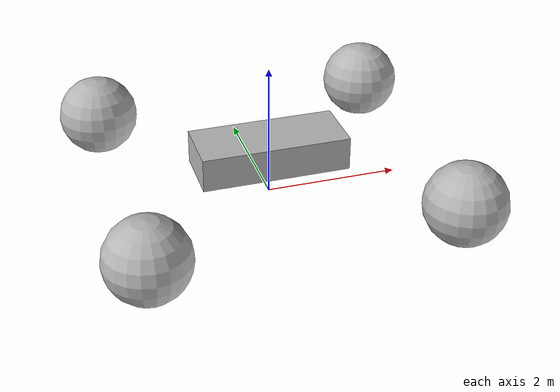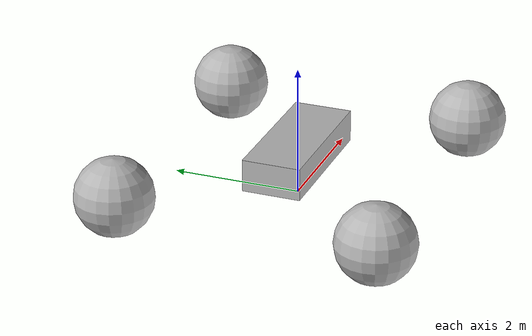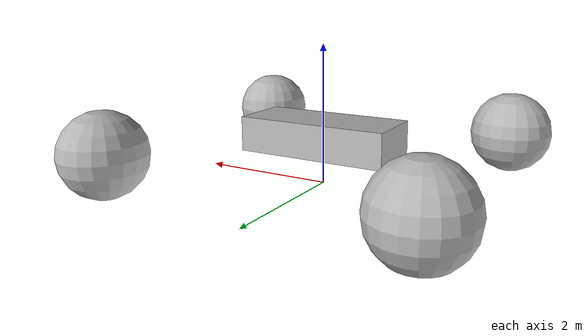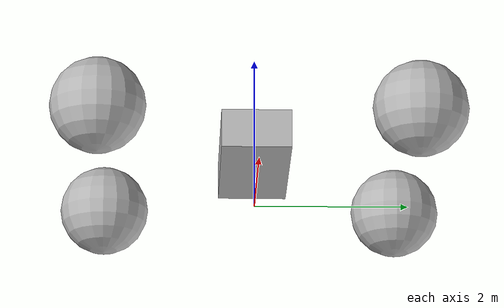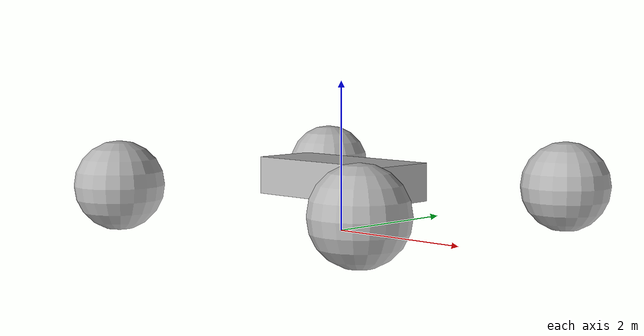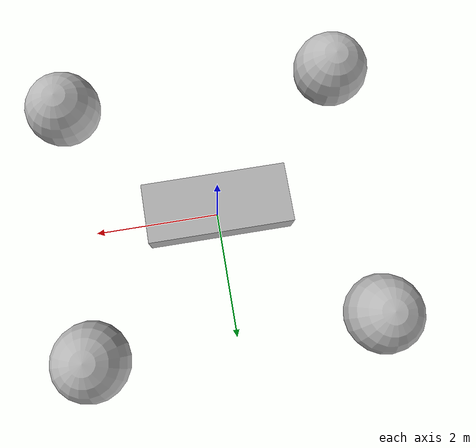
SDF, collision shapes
<?xml version='1.0' encoding='utf-8'?>
<sdf version="1.8">
  <model name="perseverance">
    <self_collide>false</self_collide>

    <link name="base_link">
      <inertial>
        <pose>0 0 0.1 0 0 0</pose>
        <mass>800.0</mass>
        <inertia>
          <ixx>400.0</ixx><iyy>700.0</iyy><izz>900.0</izz>
        </inertia>
      </inertial>
      <visual name="v">
        <pose>0 0 0 0 0 1.5707</pose>
        <geometry><mesh><uri>file:///home/keno/ros2_ws/src/my_robot_description/models/perseverance/resources/perseverance.dae</uri><scale>2 2 2</scale></mesh></geometry>
      </visual>
      <collision name="c">
        <pose>0 0 0.7 0 0 0</pose>
        <geometry><box><size>2.2 0.9 0.5</size></box></geometry>
      </collision>
    </link>

    <link name="lidar_link">
      <pose>0.0 0 2.0 0 0 0</pose>
      <sensor name="lidar" type="gpu_lidar">
        <topic>/model/perseverance/scan</topic>
        <update_rate>15</update_rate>
        <ray>
          <scan><horizontal><samples>360</samples><resolution>1</resolution><min_angle>-3.14159</min_angle><max_angle>3.14159</max_angle></horizontal></scan>
          <range><min>6.0</min><max>50.0</max></range>
        </ray>
      </sensor>
    </link>
    <joint name="lidar_joint" type="fixed"><parent>base_link</parent><child>lidar_link</child></joint>

    <link name="camera_link">
      <pose>3.5 0 2.5 0 0.15 -0.1</pose>
      <sensor name="camera" type="camera">
        <topic>/model/perseverance/camera</topic>
        <update_rate>15</update_rate>
        <camera>
          <horizontal_fov>1.047</horizontal_fov>
          <image><width>800</width><height>600</height></image>
          <clip><near>0.1</near><far>100.0</far></clip>
        </camera>
      </sensor>
    </link>
    <joint name="camera_joint" type="fixed"><parent>base_link</parent><child>camera_link</child></joint>

    <link name="left_front">
      <pose>2.2 2.0 0.6 0 0 0</pose>
      <inertial><mass>50.0</mass><inertia><ixx>10</ixx><iyy>10</iyy><izz>10</izz></inertia></inertial>
      <visual name="v"><pose>0 0 0 1.5707 0 0</pose><geometry><cylinder><radius>0.6</radius><length>0.5</length></cylinder></geometry></visual>
      <collision name="c">
        <pose>0 0 0 0 0 0</pose>
        <geometry><sphere><radius>0.6</radius></sphere></geometry>
        <surface>
          <contact><ode><kp>1000000.0</kp><kd>100.0</kd></ode></contact>
          <friction><ode><mu>1.0</mu><mu2>0.5</mu2><fdir1>1 0 0</fdir1></ode></friction>
        </surface>
      </collision>
    </link>

    <link name="left_back">
      <pose>-2.2 2.0 0.6 0 0 0</pose>
      <inertial><mass>50.0</mass><inertia><ixx>10</ixx><iyy>10</iyy><izz>10</izz></inertia></inertial>
      <visual name="v"><pose>0 0 0 1.5707 0 0</pose><geometry><cylinder><radius>0.6</radius><length>0.5</length></cylinder></geometry></visual>
      <collision name="c">
        <pose>0 0 0 0 0 0</pose>
        <geometry><sphere><radius>0.6</radius></sphere></geometry>
        <surface>
          <contact><ode><kp>1000000.0</kp><kd>100.0</kd></ode></contact>
          <friction><ode><mu>1.0</mu><mu2>0.5</mu2><fdir1>1 0 0</fdir1></ode></friction>
        </surface>
      </collision>
    </link>

    <link name="right_front">
      <pose>2.2 -2.0 0.6 0 0 0</pose>
      <inertial><mass>50.0</mass><inertia><ixx>10</ixx><iyy>10</iyy><izz>10</izz></inertia></inertial>
      <visual name="v"><pose>0 0 0 1.5707 0 0</pose><geometry><cylinder><radius>0.6</radius><length>0.5</length></cylinder></geometry></visual>
      <collision name="c">
        <pose>0 0 0 0 0 0</pose>
        <geometry><sphere><radius>0.6</radius></sphere></geometry>
        <surface>
          <contact><ode><kp>1000000.0</kp><kd>100.0</kd></ode></contact>
          <friction><ode><mu>1.0</mu><mu2>0.5</mu2><fdir1>1 0 0</fdir1></ode></friction>
        </surface>
      </collision>
    </link>

    <link name="right_back">
      <pose>-2.2 -2.0 0.6 0 0 0</pose>
      <inertial><mass>50.0</mass><inertia><ixx>10</ixx><iyy>10</iyy><izz>10</izz></inertia></inertial>
      <visual name="v"><pose>0 0 0 1.5707 0 0</pose><geometry><cylinder><radius>0.6</radius><length>0.5</length></cylinder></geometry></visual>
      <collision name="c">
        <pose>0 0 0 0 0 0</pose>
        <geometry><sphere><radius>0.6</radius></sphere></geometry>
        <surface>
          <contact><ode><kp>1000000.0</kp><kd>100.0</kd></ode></contact>
          <friction><ode><mu>1.0</mu><mu2>0.5</mu2><fdir1>1 0 0</fdir1></ode></friction>
        </surface>
      </collision>
    </link>

    <joint name="left_front_j" type="revolute"><child>left_front</child><parent>base_link</parent><axis><xyz>0 1 0</xyz><limit><effort>50000</effort></limit></axis></joint>
    <joint name="left_back_j" type="revolute"><child>left_back</child><parent>base_link</parent><axis><xyz>0 1 0</xyz><limit><effort>50000</effort></limit></axis></joint>
    <joint name="right_front_j" type="revolute"><child>right_front</child><parent>base_link</parent><axis><xyz>0 1 0</xyz><limit><effort>50000</effort></limit></axis></joint>
    <joint name="right_back_j" type="revolute"><child>right_back</child><parent>base_link</parent><axis><xyz>0 1 0</xyz><limit><effort>50000</effort></limit></axis></joint>

    <plugin filename="gz-sim-diff-drive-system" name="gz::sim::systems::DiffDrive">
      <left_joint>left_front_j</left_joint>
      <left_joint>left_back_j</left_joint>
      <right_joint>right_front_j</right_joint>
      <right_joint>right_back_j</right_joint>
      <wheel_separation>3.8</wheel_separation>
      <wheel_radius>0.6</wheel_radius>
      <max_torque>50000</max_torque>
      <max_linear_acceleration>1.0</max_linear_acceleration>
      <max_angular_acceleration>1.0</max_angular_acceleration>
      <topic>/model/perseverance/cmd_vel</topic>
      <odom_topic>/model/perseverance/odometry</odom_topic>
      <publish_odom>true</publish_odom>
      <publish_odom_tf>true</publish_odom_tf>
      <odom_frame>perseverance/odom</odom_frame>
      <robot_base_frame>perseverance/base_link</robot_base_frame>
    </plugin>
  </model>
</sdf>
